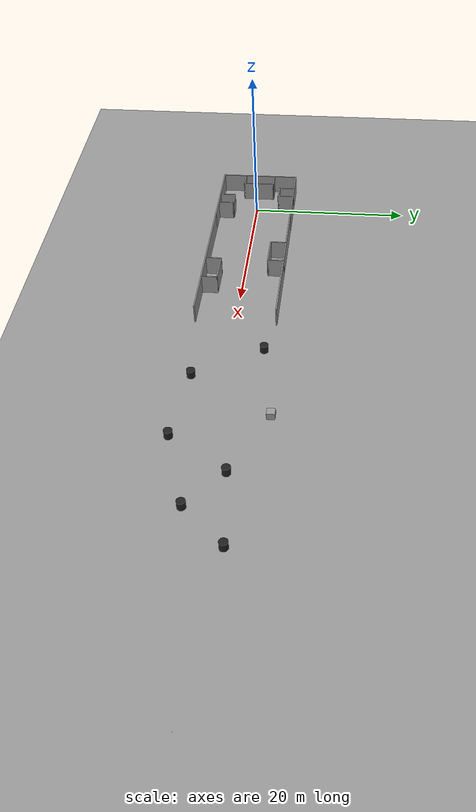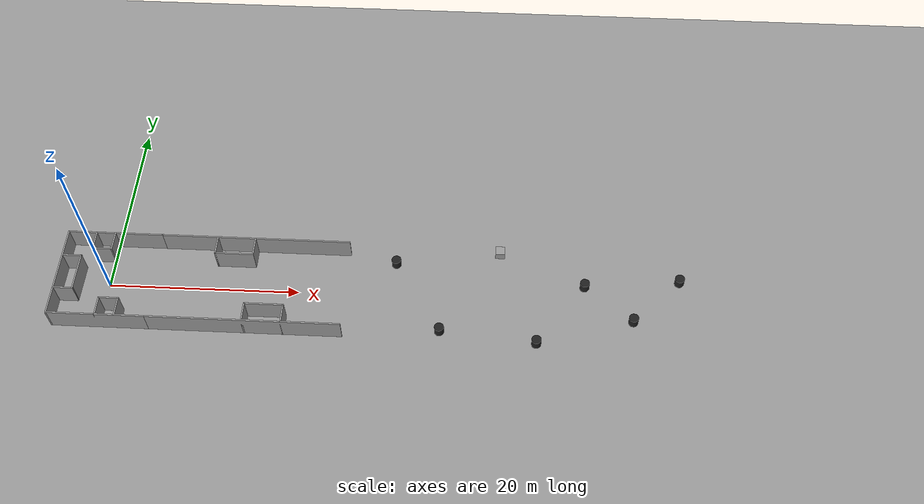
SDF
<sdf version="1.6">
 <world name="default">
  <light name="sun" type="directional">
   <pose>0 0 10 0 -0 0</pose>
   <diffuse>0.8 0.8 0.8 1</diffuse>
   <specular>0.1 0.1 0.1 1</specular>
   <attenuation>
    <range>1000</range>
    <constant>0.9</constant>
    <linear>0.01</linear>
    <quadratic>0.001</quadratic>
   </attenuation>
   <direction>-0.5 0.5 -1</direction>
  </light>
  <gravity>0 0 -9.8</gravity>
  <magnetic_field>6e-06 2.3e-05 -4.2e-05</magnetic_field>
  <atmosphere type="adiabatic"/>
  <physics name="default_physics" default="0" type="ode">
   <max_step_size>0.001</max_step_size>
   <real_time_factor>1</real_time_factor>
   <real_time_update_rate>1000</real_time_update_rate>
  </physics>
  <scene><ambient>0.4 0.4 0.4 1</ambient><background>0.7 0.7 0.7 1</background><shadows>1</shadows></scene>
  <spherical_coordinates>
   <surface_model>EARTH_WGS84</surface_model>
   <latitude_deg>0</latitude_deg>
   <longitude_deg>0</longitude_deg>
   <elevation>0</elevation>
   <heading_deg>0</heading_deg>
  </spherical_coordinates>
  <model name="part_u">
   <link name="Wall_78">
    <collision name="Wall_78_Collision">
     <geometry><box><size>10.15 0.15 2.5</size></box></geometry>
     <pose>0 0 1.25 0 -0 0</pose>
    </collision>
    <visual name="Wall_78_Visual">
     <pose>0 0 1.25 0 -0 0</pose>
     <geometry><box><size>10.15 0.15 2.5</size></box></geometry>
     <material>
      <script><uri>file://media/materials/scripts/gazebo.material</uri><name>Gazebo/Grey</name></script>
      <ambient>1 1 1 1</ambient>
     </material>
    </visual>
    <pose>0 -5 0 0 -0 3.14159</pose>
   </link>
   <link name="Wall_79">
    <collision name="Wall_79_Collision">
     <geometry><box><size>10.15 0.15 2.5</size></box></geometry>
     <pose>0 0 1.25 0 -0 0</pose>
    </collision>
    <visual name="Wall_79_Visual">
     <pose>0 0 1.25 0 -0 0</pose>
     <geometry><box><size>10.15 0.15 2.5</size></box></geometry>
     <material>
      <script><uri>file://media/materials/scripts/gazebo.material</uri><name>Gazebo/Grey</name></script>
      <ambient>1 1 1 1</ambient>
     </material>
    </visual>
    <pose>-5 0 0 0 -0 1.5708</pose>
   </link>
   <link name="Wall_80">
    <collision name="Wall_80_Collision">
     <geometry><box><size>10.15 0.15 2.5</size></box></geometry>
     <pose>0 0 1.25 0 -0 0</pose>
    </collision>
    <visual name="Wall_80_Visual">
     <pose>0 0 1.25 0 -0 0</pose>
     <geometry><box><size>10.15 0.15 2.5</size></box></geometry>
     <material>
      <script><uri>file://media/materials/scripts/gazebo.material</uri><name>Gazebo/Grey</name></script>
      <ambient>1 1 1 1</ambient>
     </material>
    </visual>
    <pose>0 5 0 0 -0 0</pose>
   </link>
   <link name="Wall_82">
    <collision name="Wall_82_Collision">
     <geometry><box><size>2.15 0.15 2.5</size></box></geometry>
     <pose>0 0 1.25 0 -0 0</pose>
    </collision>
    <visual name="Wall_82_Visual">
     <pose>0 0 1.25 0 -0 0</pose>
     <geometry><box><size>2.15 0.15 2.5</size></box></geometry>
     <material>
      <script><uri>file://media/materials/scripts/gazebo.material</uri><name>Gazebo/Grey</name></script>
      <ambient>1 1 1 1</ambient>
     </material>
    </visual>
    <pose>-4 2 0 0 -0 0</pose>
   </link>
   <link name="Wall_83">
    <collision name="Wall_83_Collision">
     <geometry><box><size>4.15 0.15 2.5</size></box></geometry>
     <pose>0 0 1.25 0 -0 0</pose>
    </collision>
    <visual name="Wall_83_Visual">
     <pose>0 0 1.25 0 -0 0</pose>
     <geometry><box><size>4.15 0.15 2.5</size></box></geometry>
     <material>
      <script><uri>file://media/materials/scripts/gazebo.material</uri><name>Gazebo/Grey</name></script>
      <ambient>1 1 1 1</ambient>
     </material>
    </visual>
    <pose>-3 0 0 0 0 -1.5708</pose>
   </link>
   <link name="Wall_84">
    <collision name="Wall_84_Collision">
     <geometry><box><size>2.15 0.15 2.5</size></box></geometry>
     <pose>0 0 1.25 0 -0 0</pose>
    </collision>
    <visual name="Wall_84_Visual">
     <pose>0 0 1.25 0 -0 0</pose>
     <geometry><box><size>2.15 0.15 2.5</size></box></geometry>
     <material>
      <script><uri>file://media/materials/scripts/gazebo.material</uri><name>Gazebo/Grey</name></script>
      <ambient>1 1 1 1</ambient>
     </material>
    </visual>
    <pose>-4 -2 0 0 -0 3.14159</pose>
   </link>
   <link name="Wall_86">
    <collision name="Wall_86_Collision">
     <geometry><box><size>2.15 0.15 2.5</size></box></geometry>
     <pose>0 0 1.25 0 -0 0</pose>
    </collision>
    <visual name="Wall_86_Visual">
     <pose>0 0 1.25 0 -0 0</pose>
     <geometry><box><size>2.15 0.15 2.5</size></box></geometry>
     <material>
      <script><uri>file://media/materials/scripts/gazebo.material</uri><name>Gazebo/Grey</name></script>
      <ambient>1 1 1 1</ambient>
     </material>
    </visual>
    <pose>-2 4 0 0 0 -1.5708</pose>
   </link>
   <link name="Wall_87">
    <collision name="Wall_87_Collision">
     <geometry><box><size>2.15 0.15 2.5</size></box></geometry>
     <pose>0 0 1.25 0 -0 0</pose>
    </collision>
    <visual name="Wall_87_Visual">
     <pose>0 0 1.25 0 -0 0</pose>
     <geometry><box><size>2.15 0.15 2.5</size></box></geometry>
     <material>
      <script><uri>file://media/materials/scripts/gazebo.material</uri><name>Gazebo/Grey</name></script>
      <ambient>1 1 1 1</ambient>
     </material>
    </visual>
    <pose>-1 3 0 0 -0 0</pose>
   </link>
   <link name="Wall_88">
    <collision name="Wall_88_Collision">
     <geometry><box><size>2.15 0.15 2.5</size></box></geometry>
     <pose>0 0 1.25 0 -0 0</pose>
    </collision>
    <visual name="Wall_88_Visual">
     <pose>0 0 1.25 0 -0 0</pose>
     <geometry><box><size>2.15 0.15 2.5</size></box></geometry>
     <material>
      <script><uri>file://media/materials/scripts/gazebo.material</uri><name>Gazebo/Grey</name></script>
      <ambient>1 1 1 1</ambient>
     </material>
    </visual>
    <pose>0 4 0 0 -0 1.5708</pose>
   </link>
   <link name="Wall_90">
    <collision name="Wall_90_Collision">
     <geometry><box><size>2.15 0.15 2.5</size></box></geometry>
     <pose>0 0 1.25 0 -0 0</pose>
    </collision>
    <visual name="Wall_90_Visual">
     <pose>0 0 1.25 0 -0 0</pose>
     <geometry><box><size>2.15 0.15 2.5</size></box></geometry>
     <material>
      <script><uri>file://media/materials/scripts/gazebo.material</uri><name>Gazebo/Grey</name></script>
      <ambient>1 1 1 1</ambient>
     </material>
    </visual>
    <pose>0 -4 0 0 -0 1.5708</pose>
   </link>
   <link name="Wall_91">
    <collision name="Wall_91_Collision">
     <geometry><box><size>2.15 0.15 2.5</size></box></geometry>
     <pose>0 0 1.25 0 -0 0</pose>
    </collision>
    <visual name="Wall_91_Visual">
     <pose>0 0 1.25 0 -0 0</pose>
     <geometry><box><size>2.15 0.15 2.5</size></box></geometry>
     <material>
      <script><uri>file://media/materials/scripts/gazebo.material</uri><name>Gazebo/Grey</name></script>
      <ambient>1 1 1 1</ambient>
     </material>
    </visual>
    <pose>1 -3 0 0 -0 0</pose>
   </link>
   <link name="Wall_92">
    <collision name="Wall_92_Collision">
     <geometry><box><size>2.15 0.15 2.5</size></box></geometry>
     <pose>0 0 1.25 0 -0 0</pose>
    </collision>
    <visual name="Wall_92_Visual">
     <pose>0 0 1.25 0 -0 0</pose>
     <geometry><box><size>2.15 0.15 2.5</size></box></geometry>
     <material>
      <script><uri>file://media/materials/scripts/gazebo.material</uri><name>Gazebo/Grey</name></script>
      <ambient>1 1 1 1</ambient>
     </material>
    </visual>
    <pose>2 -4 0 0 0 -1.5708</pose>
   </link>
   <static>1</static>
  </model>
  <model name="part_line">
   <link name="Wall_15">
    <pose>0 -5 0 0 -0 0</pose>
    <visual name="Wall_15_Visual">
     <pose>0 0 1.25 0 -0 0</pose>
     <geometry><box><size>20.15 0.15 2.5</size></box></geometry>
     <material>
      <script><uri>file://media/materials/scripts/gazebo.material</uri><name>Gazebo/Grey</name></script>
      <ambient>1 1 1 1</ambient>
      <diffuse>0.7 0.7 0.7 1</diffuse>
      <specular>0.01 0.01 0.01 1</specular>
      <emissive>0 0 0 1</emissive>
     </material>
    </visual>
    <collision name="Wall_15_Collision">
     <pose>0 0 1.25 0 -0 0</pose>
     <geometry><box><size>20.15 0.15 2.5</size></box></geometry>
     <surface>
      <friction>
       <ode><mu>1</mu><mu2>1</mu2><fdir1>0 0 0</fdir1><slip1>0</slip1><slip2>0</slip2></ode>
       <torsional>
        <coefficient>1</coefficient>
        <patch_radius>0</patch_radius>
        <surface_radius>0</surface_radius>
        <use_patch_radius>1</use_patch_radius>
        <ode><slip>0</slip></ode>
       </torsional>
      </friction>
      <bounce><restitution_coefficient>0</restitution_coefficient><threshold>1e+06</threshold></bounce>
      <contact>
       <collide_without_contact>0</collide_without_contact>
       <collide_without_contact_bitmask>1</collide_without_contact_bitmask>
       <collide_bitmask>1</collide_bitmask>
       <ode>
        <soft_cfm>0</soft_cfm>
        <soft_erp>0.2</soft_erp>
        <kp>1e+13</kp>
        <kd>1</kd>
        <max_vel>0.01</max_vel>
        <min_depth>0</min_depth>
       </ode>
       <bullet>
        <split_impulse>1</split_impulse>
        <split_impulse_penetration_threshold>-0.01</split_impulse_penetration_threshold>
        <soft_cfm>0</soft_cfm>
        <soft_erp>0.2</soft_erp>
        <kp>1e+13</kp>
        <kd>1</kd>
       </bullet>
      </contact>
     </surface>
    </collision>
   </link>
   <link name="Wall_17">
    <pose>0 5 0 0 -0 0</pose>
    <visual name="Wall_17_Visual">
     <pose>0 0 1.25 0 -0 0</pose>
     <geometry><box><size>20.15 0.15 2.5</size></box></geometry>
     <material>
      <script><uri>file://media/materials/scripts/gazebo.material</uri><name>Gazebo/Grey</name></script>
      <ambient>1 1 1 1</ambient>
      <diffuse>0.7 0.7 0.7 1</diffuse>
      <specular>0.01 0.01 0.01 1</specular>
      <emissive>0 0 0 1</emissive>
     </material>
    </visual>
    <collision name="Wall_17_Collision">
     <pose>0 0 1.25 0 -0 0</pose>
     <geometry><box><size>20.15 0.15 2.5</size></box></geometry>
     <surface>
      <friction>
       <ode><mu>1</mu><mu2>1</mu2><fdir1>0 0 0</fdir1><slip1>0</slip1><slip2>0</slip2></ode>
       <torsional>
        <coefficient>1</coefficient>
        <patch_radius>0</patch_radius>
        <surface_radius>0</surface_radius>
        <use_patch_radius>1</use_patch_radius>
        <ode><slip>0</slip></ode>
       </torsional>
      </friction>
      <bounce><restitution_coefficient>0</restitution_coefficient><threshold>1e+06</threshold></bounce>
      <contact>
       <collide_without_contact>0</collide_without_contact>
       <collide_without_contact_bitmask>1</collide_without_contact_bitmask>
       <collide_bitmask>1</collide_bitmask>
       <ode>
        <soft_cfm>0</soft_cfm>
        <soft_erp>0.2</soft_erp>
        <kp>1e+13</kp>
        <kd>1</kd>
        <max_vel>0.01</max_vel>
        <min_depth>0</min_depth>
       </ode>
       <bullet>
        <split_impulse>1</split_impulse>
        <split_impulse_penetration_threshold>-0.01</split_impulse_penetration_threshold>
        <soft_cfm>0</soft_cfm>
        <soft_erp>0.2</soft_erp>
        <kp>1e+13</kp>
        <kd>1</kd>
       </bullet>
      </contact>
     </surface>
    </collision>
   </link>
   <link name="Wall_19">
    <pose>-4 4 0 0 0 -1.5708</pose>
    <visual name="Wall_19_Visual">
     <pose>0 0 1.25 0 -0 0</pose>
     <geometry><box><size>2.15 0.15 2.5</size></box></geometry>
     <material>
      <script><uri>file://media/materials/scripts/gazebo.material</uri><name>Gazebo/Grey</name></script>
      <ambient>1 1 1 1</ambient>
      <diffuse>0.7 0.7 0.7 1</diffuse>
      <specular>0.01 0.01 0.01 1</specular>
      <emissive>0 0 0 1</emissive>
     </material>
    </visual>
    <collision name="Wall_19_Collision">
     <pose>0 0 1.25 0 -0 0</pose>
     <geometry><box><size>2.15 0.15 2.5</size></box></geometry>
     <surface>
      <friction>
       <ode><mu>1</mu><mu2>1</mu2><fdir1>0 0 0</fdir1><slip1>0</slip1><slip2>0</slip2></ode>
       <torsional>
        <coefficient>1</coefficient>
        <patch_radius>0</patch_radius>
        <surface_radius>0</surface_radius>
        <use_patch_radius>1</use_patch_radius>
        <ode><slip>0</slip></ode>
       </torsional>
      </friction>
      <bounce><restitution_coefficient>0</restitution_coefficient><threshold>1e+06</threshold></bounce>
      <contact>
       <collide_without_contact>0</collide_without_contact>
       <collide_without_contact_bitmask>1</collide_without_contact_bitmask>
       <collide_bitmask>1</collide_bitmask>
       <ode>
        <soft_cfm>0</soft_cfm>
        <soft_erp>0.2</soft_erp>
        <kp>1e+13</kp>
        <kd>1</kd>
        <max_vel>0.01</max_vel>
        <min_depth>0</min_depth>
       </ode>
       <bullet>
        <split_impulse>1</split_impulse>
        <split_impulse_penetration_threshold>-0.01</split_impulse_penetration_threshold>
        <soft_cfm>0</soft_cfm>
        <soft_erp>0.2</soft_erp>
        <kp>1e+13</kp>
        <kd>1</kd>
       </bullet>
      </contact>
     </surface>
    </collision>
   </link>
   <link name="Wall_20">
    <pose>-2 3 0 0 -0 0</pose>
    <visual name="Wall_20_Visual">
     <pose>0 0 1.25 0 -0 0</pose>
     <geometry><box><size>4.15 0.15 2.5</size></box></geometry>
     <material>
      <script><uri>file://media/materials/scripts/gazebo.material</uri><name>Gazebo/Grey</name></script>
      <ambient>1 1 1 1</ambient>
      <diffuse>0.7 0.7 0.7 1</diffuse>
      <specular>0.01 0.01 0.01 1</specular>
      <emissive>0 0 0 1</emissive>
     </material>
    </visual>
    <collision name="Wall_20_Collision">
     <pose>0 0 1.25 0 -0 0</pose>
     <geometry><box><size>4.15 0.15 2.5</size></box></geometry>
     <surface>
      <friction>
       <ode><mu>1</mu><mu2>1</mu2><fdir1>0 0 0</fdir1><slip1>0</slip1><slip2>0</slip2></ode>
       <torsional>
        <coefficient>1</coefficient>
        <patch_radius>0</patch_radius>
        <surface_radius>0</surface_radius>
        <use_patch_radius>1</use_patch_radius>
        <ode><slip>0</slip></ode>
       </torsional>
      </friction>
      <bounce><restitution_coefficient>0</restitution_coefficient><threshold>1e+06</threshold></bounce>
      <contact>
       <collide_without_contact>0</collide_without_contact>
       <collide_without_contact_bitmask>1</collide_without_contact_bitmask>
       <collide_bitmask>1</collide_bitmask>
       <ode>
        <soft_cfm>0</soft_cfm>
        <soft_erp>0.2</soft_erp>
        <kp>1e+13</kp>
        <kd>1</kd>
        <max_vel>0.01</max_vel>
        <min_depth>0</min_depth>
       </ode>
       <bullet>
        <split_impulse>1</split_impulse>
        <split_impulse_penetration_threshold>-0.01</split_impulse_penetration_threshold>
        <soft_cfm>0</soft_cfm>
        <soft_erp>0.2</soft_erp>
        <kp>1e+13</kp>
        <kd>1</kd>
       </bullet>
      </contact>
     </surface>
    </collision>
   </link>
   <link name="Wall_21">
    <pose>0 4 0 0 -0 1.5708</pose>
    <visual name="Wall_21_Visual">
     <pose>0 0 1.25 0 -0 0</pose>
     <geometry><box><size>2.15 0.15 2.5</size></box></geometry>
     <material>
      <script><uri>file://media/materials/scripts/gazebo.material</uri><name>Gazebo/Grey</name></script>
      <ambient>1 1 1 1</ambient>
      <diffuse>0.7 0.7 0.7 1</diffuse>
      <specular>0.01 0.01 0.01 1</specular>
      <emissive>0 0 0 1</emissive>
     </material>
    </visual>
    <collision name="Wall_21_Collision">
     <pose>0 0 1.25 0 -0 0</pose>
     <geometry><box><size>2.15 0.15 2.5</size></box></geometry>
     <surface>
      <friction>
       <ode><mu>1</mu><mu2>1</mu2><fdir1>0 0 0</fdir1><slip1>0</slip1><slip2>0</slip2></ode>
       <torsional>
        <coefficient>1</coefficient>
        <patch_radius>0</patch_radius>
        <surface_radius>0</surface_radius>
        <use_patch_radius>1</use_patch_radius>
        <ode><slip>0</slip></ode>
       </torsional>
      </friction>
      <bounce><restitution_coefficient>0</restitution_coefficient><threshold>1e+06</threshold></bounce>
      <contact>
       <collide_without_contact>0</collide_without_contact>
       <collide_without_contact_bitmask>1</collide_without_contact_bitmask>
       <collide_bitmask>1</collide_bitmask>
       <ode>
        <soft_cfm>0</soft_cfm>
        <soft_erp>0.2</soft_erp>
        <kp>1e+13</kp>
        <kd>1</kd>
        <max_vel>0.01</max_vel>
        <min_depth>0</min_depth>
       </ode>
       <bullet>
        <split_impulse>1</split_impulse>
        <split_impulse_penetration_threshold>-0.01</split_impulse_penetration_threshold>
        <soft_cfm>0</soft_cfm>
        <soft_erp>0.2</soft_erp>
        <kp>1e+13</kp>
        <kd>1</kd>
       </bullet>
      </contact>
     </surface>
    </collision>
   </link>
   <link name="Wall_23">
    <pose>0 -4 0 0 -0 1.5708</pose>
    <visual name="Wall_23_Visual">
     <pose>0 0 1.25 0 -0 0</pose>
     <geometry><box><size>2.15 0.15 2.5</size></box></geometry>
     <material>
      <script><uri>file://media/materials/scripts/gazebo.material</uri><name>Gazebo/Grey</name></script>
      <ambient>1 1 1 1</ambient>
      <diffuse>0.7 0.7 0.7 1</diffuse>
      <specular>0.01 0.01 0.01 1</specular>
      <emissive>0 0 0 1</emissive>
     </material>
    </visual>
    <collision name="Wall_23_Collision">
     <pose>0 0 1.25 0 -0 0</pose>
     <geometry><box><size>2.15 0.15 2.5</size></box></geometry>
     <surface>
      <friction>
       <ode><mu>1</mu><mu2>1</mu2><fdir1>0 0 0</fdir1><slip1>0</slip1><slip2>0</slip2></ode>
       <torsional>
        <coefficient>1</coefficient>
        <patch_radius>0</patch_radius>
        <surface_radius>0</surface_radius>
        <use_patch_radius>1</use_patch_radius>
        <ode><slip>0</slip></ode>
       </torsional>
      </friction>
      <bounce><restitution_coefficient>0</restitution_coefficient><threshold>1e+06</threshold></bounce>
      <contact>
       <collide_without_contact>0</collide_without_contact>
       <collide_without_contact_bitmask>1</collide_without_contact_bitmask>
       <collide_bitmask>1</collide_bitmask>
       <ode>
        <soft_cfm>0</soft_cfm>
        <soft_erp>0.2</soft_erp>
        <kp>1e+13</kp>
        <kd>1</kd>
        <max_vel>0.01</max_vel>
        <min_depth>0</min_depth>
       </ode>
       <bullet>
        <split_impulse>1</split_impulse>
        <split_impulse_penetration_threshold>-0.01</split_impulse_penetration_threshold>
        <soft_cfm>0</soft_cfm>
        <soft_erp>0.2</soft_erp>
        <kp>1e+13</kp>
        <kd>1</kd>
       </bullet>
      </contact>
     </surface>
    </collision>
   </link>
   <link name="Wall_24">
    <pose>2 -3 0 0 -0 0</pose>
    <visual name="Wall_24_Visual">
     <pose>0 0 1.25 0 -0 0</pose>
     <geometry><box><size>4.15 0.15 2.5</size></box></geometry>
     <material>
      <script><uri>file://media/materials/scripts/gazebo.material</uri><name>Gazebo/Grey</name></script>
      <ambient>1 1 1 1</ambient>
      <diffuse>0.7 0.7 0.7 1</diffuse>
      <specular>0.01 0.01 0.01 1</specular>
      <emissive>0 0 0 1</emissive>
     </material>
    </visual>
    <collision name="Wall_24_Collision">
     <pose>0 0 1.25 0 -0 0</pose>
     <geometry><box><size>4.15 0.15 2.5</size></box></geometry>
     <surface>
      <friction>
       <ode><mu>1</mu><mu2>1</mu2><fdir1>0 0 0</fdir1><slip1>0</slip1><slip2>0</slip2></ode>
       <torsional>
        <coefficient>1</coefficient>
        <patch_radius>0</patch_radius>
        <surface_radius>0</surface_radius>
        <use_patch_radius>1</use_patch_radius>
        <ode><slip>0</slip></ode>
       </torsional>
      </friction>
      <bounce><restitution_coefficient>0</restitution_coefficient><threshold>1e+06</threshold></bounce>
      <contact>
       <collide_without_contact>0</collide_without_contact>
       <collide_without_contact_bitmask>1</collide_without_contact_bitmask>
       <collide_bitmask>1</collide_bitmask>
       <ode>
        <soft_cfm>0</soft_cfm>
        <soft_erp>0.2</soft_erp>
        <kp>1e+13</kp>
        <kd>1</kd>
        <max_vel>0.01</max_vel>
        <min_depth>0</min_depth>
       </ode>
       <bullet>
        <split_impulse>1</split_impulse>
        <split_impulse_penetration_threshold>-0.01</split_impulse_penetration_threshold>
        <soft_cfm>0</soft_cfm>
        <soft_erp>0.2</soft_erp>
        <kp>1e+13</kp>
        <kd>1</kd>
       </bullet>
      </contact>
     </surface>
    </collision>
   </link>
   <link name="Wall_25">
    <pose>4 -4 0 0 0 -1.5708</pose>
    <visual name="Wall_25_Visual">
     <pose>0 0 1.25 0 -0 0</pose>
     <geometry><box><size>2.15 0.15 2.5</size></box></geometry>
     <material>
      <script><uri>file://media/materials/scripts/gazebo.material</uri><name>Gazebo/Grey</name></script>
      <ambient>1 1 1 1</ambient>
      <diffuse>0.7 0.7 0.7 1</diffuse>
      <specular>0.01 0.01 0.01 1</specular>
      <emissive>0 0 0 1</emissive>
     </material>
    </visual>
    <collision name="Wall_25_Collision">
     <pose>0 0 1.25 0 -0 0</pose>
     <geometry><box><size>2.15 0.15 2.5</size></box></geometry>
     <surface>
      <friction>
       <ode><mu>1</mu><mu2>1</mu2><fdir1>0 0 0</fdir1><slip1>0</slip1><slip2>0</slip2></ode>
       <torsional>
        <coefficient>1</coefficient>
        <patch_radius>0</patch_radius>
        <surface_radius>0</surface_radius>
        <use_patch_radius>1</use_patch_radius>
        <ode><slip>0</slip></ode>
       </torsional>
      </friction>
      <bounce><restitution_coefficient>0</restitution_coefficient><threshold>1e+06</threshold></bounce>
      <contact>
       <collide_without_contact>0</collide_without_contact>
       <collide_without_contact_bitmask>1</collide_without_contact_bitmask>
       <collide_bitmask>1</collide_bitmask>
       <ode>
        <soft_cfm>0</soft_cfm>
        <soft_erp>0.2</soft_erp>
        <kp>1e+13</kp>
        <kd>1</kd>
        <max_vel>0.01</max_vel>
        <min_depth>0</min_depth>
       </ode>
       <bullet>
        <split_impulse>1</split_impulse>
        <split_impulse_penetration_threshold>-0.01</split_impulse_penetration_threshold>
        <soft_cfm>0</soft_cfm>
        <soft_erp>0.2</soft_erp>
        <kp>1e+13</kp>
        <kd>1</kd>
       </bullet>
      </contact>
     </surface>
    </collision>
   </link>
   <static>1</static>
   <pose>15 0 0 0 -0 0</pose>
  </model>
  <model name="ground_plane_0">
   <static>1</static>
   <link name="link">
    <collision name="collision">
     <geometry><plane><normal>0 0 1</normal><size>1000 1000</size></plane></geometry>
     <surface><friction><ode><mu>1000</mu><mu2>50</mu2></ode></friction></surface>
    </collision>
    <visual name="visual">
     <cast_shadows>0</cast_shadows>
     <geometry><plane><normal>0 0 1</normal><size>1000 1000</size></plane></geometry>
     <material>
      <script><uri>file://media/materials/scripts/gazebo.material</uri><name>Gazebo/Grey</name></script>
     </material>
    </visual>
   </link>
  </model>
  <model name="ycb_orange_wood_block">
   <link name="link">
    <pose>0 0 0.0125 0 -0 0</pose>
    <inertial>
     <mass>0.01</mass>
     <inertia><ixx>1</ixx><ixy>0</ixy><ixz>0</ixz><iyy>1</iyy><iyz>0</iyz><izz>1</izz></inertia>
    </inertial>
    <collision name="collision">
     <geometry><box><size>0.025 0.025 0.025</size></box></geometry>
     <surface>
      <friction><ode><mu>1000</mu><mu2>100</mu2></ode></friction>
      <contact><ode><kp>1e+06</kp><kd>100</kd><max_vel>1</max_vel><min_depth>0.001</min_depth></ode></contact>
     </surface>
    </collision>
    <visual name="visual">
     <geometry><box><size>0.025 0.025 0.025</size></box></geometry>
     <material>
      <script><uri>file://media/materials/scripts/gazebo.material</uri><name>Gazebo/Orange</name></script>
     </material>
    </visual>
   </link>
   <pose>80.0954 1.15578 -8e-06 0 -0 0</pose>
  </model>
  <model name="unit_cylinder_1">
   <link name="link">
    <inertial>
     <mass>1</mass>
     <inertia><ixx>0.145833</ixx><ixy>0</ixy><ixz>0</ixz><iyy>0.145833</iyy><iyz>0</iyz><izz>0.125</izz></inertia>
    </inertial>
    <visual name="visual">
     <geometry><cylinder><radius>0.5</radius><length>1</length></cylinder></geometry>
     <material>
      <script><name>Gazebo/Black</name><uri>file://media/materials/scripts/gazebo.material</uri></script>
      <ambient>0.3 0.3 0.3 1</ambient>
      <diffuse>0.7 0.7 0.7 1</diffuse>
      <specular>0.01 0.01 0.01 1</specular>
      <emissive>0 0 0 1</emissive>
      <shader type="vertex"><normal_map>__default__</normal_map></shader>
     </material>
    </visual>
    <collision name="collision">
     <geometry><cylinder><radius>0.5</radius><length>1</length></cylinder></geometry>
     <surface>
      <friction>
       <ode><mu>1</mu><mu2>1</mu2><fdir1>0 0 0</fdir1><slip1>0</slip1><slip2>0</slip2></ode>
       <torsional>
        <coefficient>1</coefficient>
        <patch_radius>0</patch_radius>
        <surface_radius>0</surface_radius>
        <use_patch_radius>1</use_patch_radius>
        <ode><slip>0</slip></ode>
       </torsional>
      </friction>
      <bounce><restitution_coefficient>0</restitution_coefficient><threshold>1e+06</threshold></bounce>
      <contact>
       <collide_without_contact>0</collide_without_contact>
       <collide_without_contact_bitmask>1</collide_without_contact_bitmask>
       <collide_bitmask>1</collide_bitmask>
       <ode>
        <soft_cfm>0</soft_cfm>
        <soft_erp>0.2</soft_erp>
        <kp>1e+13</kp>
        <kd>1</kd>
        <max_vel>0.01</max_vel>
        <min_depth>0</min_depth>
       </ode>
       <bullet>
        <split_impulse>1</split_impulse>
        <split_impulse_penetration_threshold>-0.01</split_impulse_penetration_threshold>
        <soft_cfm>0</soft_cfm>
        <soft_erp>0.2</soft_erp>
        <kp>1e+13</kp>
        <kd>1</kd>
       </bullet>
      </contact>
     </surface>
    </collision>
   </link>
   <static>0</static>
   <pose>30 4 0.499992 -3e-06 -2e-06 0</pose>
  </model>
  <model name="unit_cylinder_1_0">
   <link name="link">
    <inertial>
     <mass>1</mass>
     <inertia><ixx>0.145833</ixx><ixy>0</ixy><ixz>0</ixz><iyy>0.145833</iyy><iyz>0</iyz><izz>0.125</izz></inertia>
    </inertial>
    <visual name="visual">
     <geometry><cylinder><radius>0.5</radius><length>1</length></cylinder></geometry>
     <material>
      <script><name>Gazebo/Black</name><uri>file://media/materials/scripts/gazebo.material</uri></script>
      <ambient>0.3 0.3 0.3 1</ambient>
      <diffuse>0.7 0.7 0.7 1</diffuse>
      <specular>0.01 0.01 0.01 1</specular>
      <emissive>0 0 0 1</emissive>
      <shader type="vertex"><normal_map>__default__</normal_map></shader>
     </material>
    </visual>
    <collision name="collision">
     <geometry><cylinder><radius>0.5</radius><length>1</length></cylinder></geometry>
     <surface>
      <friction>
       <ode><mu>1</mu><mu2>1</mu2><fdir1>0 0 0</fdir1><slip1>0</slip1><slip2>0</slip2></ode>
       <torsional>
        <coefficient>1</coefficient>
        <patch_radius>0</patch_radius>
        <surface_radius>0</surface_radius>
        <use_patch_radius>1</use_patch_radius>
        <ode><slip>0</slip></ode>
       </torsional>
      </friction>
      <bounce><restitution_coefficient>0</restitution_coefficient><threshold>1e+06</threshold></bounce>
      <contact>
       <collide_without_contact>0</collide_without_contact>
       <collide_without_contact_bitmask>1</collide_without_contact_bitmask>
       <collide_bitmask>1</collide_bitmask>
       <ode>
        <soft_cfm>0</soft_cfm>
        <soft_erp>0.2</soft_erp>
        <kp>1e+13</kp>
        <kd>1</kd>
        <max_vel>0.01</max_vel>
        <min_depth>0</min_depth>
       </ode>
       <bullet>
        <split_impulse>1</split_impulse>
        <split_impulse_penetration_threshold>-0.01</split_impulse_penetration_threshold>
        <soft_cfm>0</soft_cfm>
        <soft_erp>0.2</soft_erp>
        <kp>1e+13</kp>
        <kd>1</kd>
       </bullet>
      </contact>
     </surface>
    </collision>
   </link>
   <static>0</static>
   <pose>35 -4 0.499991 0 -0 0</pose>
  </model>
  <model name="unit_box_0">
   <link name="link">
    <pose>1.00611 0.849615 -0 0 -0 0</pose>
    <inertial>
     <mass>1</mass>
     <inertia>
      <ixx>0.166667</ixx>
      <ixy>0</ixy>
      <ixz>0</ixz>
      <iyy>0.166667</iyy>
      <iyz>0</iyz>
      <izz>0.166667</izz>
     </inertia>
    </inertial>
    <visual name="visual">
     <geometry><box><size>1 1 1</size></box></geometry>
     <material>
      <script><name>Gazebo/Grey</name><uri>file://media/materials/scripts/gazebo.material</uri></script>
      <ambient>0.3 0.3 0.3 1</ambient>
      <diffuse>0.7 0.7 0.7 1</diffuse>
      <specular>0.01 0.01 0.01 1</specular>
      <emissive>0 0 0 1</emissive>
      <shader type="vertex"><normal_map>__default__</normal_map></shader>
     </material>
    </visual>
    <collision name="collision">
     <geometry><box><size>0.5 0.5 0.5</size></box></geometry>
     <surface>
      <friction>
       <ode><mu>1</mu><mu2>1</mu2><fdir1>0 0 0</fdir1><slip1>0</slip1><slip2>0</slip2></ode>
       <torsional>
        <coefficient>1</coefficient>
        <patch_radius>0</patch_radius>
        <surface_radius>0</surface_radius>
        <use_patch_radius>1</use_patch_radius>
        <ode><slip>0</slip></ode>
       </torsional>
      </friction>
      <bounce><restitution_coefficient>0</restitution_coefficient><threshold>1e+06</threshold></bounce>
      <contact>
       <collide_without_contact>0</collide_without_contact>
       <collide_without_contact_bitmask>1</collide_without_contact_bitmask>
       <collide_bitmask>1</collide_bitmask>
       <ode>
        <soft_cfm>0</soft_cfm>
        <soft_erp>0.2</soft_erp>
        <kp>1e+13</kp>
        <kd>1</kd>
        <max_vel>0.01</max_vel>
        <min_depth>0</min_depth>
       </ode>
       <bullet>
        <split_impulse>1</split_impulse>
        <split_impulse_penetration_threshold>-0.01</split_impulse_penetration_threshold>
        <soft_cfm>0</soft_cfm>
        <soft_erp>0.2</soft_erp>
        <kp>1e+13</kp>
        <kd>1</kd>
       </bullet>
      </contact>
     </surface>
    </collision>
   </link>
   <static>0</static>
   <pose>40 5 0.25 0 -0 0</pose>
  </model>
  <model name="unit_cylinder_1_1">
   <link name="link">
    <inertial>
     <mass>1</mass>
     <inertia><ixx>0.145833</ixx><ixy>0</ixy><ixz>0</ixz><iyy>0.145833</iyy><iyz>0</iyz><izz>0.125</izz></inertia>
    </inertial>
    <visual name="visual">
     <geometry><cylinder><radius>0.5</radius><length>1</length></cylinder></geometry>
     <material>
      <script><name>Gazebo/Black</name><uri>file://media/materials/scripts/gazebo.material</uri></script>
      <ambient>0.3 0.3 0.3 1</ambient>
      <diffuse>0.7 0.7 0.7 1</diffuse>
      <specular>0.01 0.01 0.01 1</specular>
      <emissive>0 0 0 1</emissive>
      <shader type="vertex"><normal_map>__default__</normal_map></shader>
     </material>
    </visual>
    <collision name="collision">
     <geometry><cylinder><radius>0.5</radius><length>1</length></cylinder></geometry>
     <surface>
      <friction>
       <ode><mu>1</mu><mu2>1</mu2><fdir1>0 0 0</fdir1><slip1>0</slip1><slip2>0</slip2></ode>
       <torsional>
        <coefficient>1</coefficient>
        <patch_radius>0</patch_radius>
        <surface_radius>0</surface_radius>
        <use_patch_radius>1</use_patch_radius>
        <ode><slip>0</slip></ode>
       </torsional>
      </friction>
      <bounce><restitution_coefficient>0</restitution_coefficient><threshold>1e+06</threshold></bounce>
      <contact>
       <collide_without_contact>0</collide_without_contact>
       <collide_without_contact_bitmask>1</collide_without_contact_bitmask>
       <collide_bitmask>1</collide_bitmask>
       <ode>
        <soft_cfm>0</soft_cfm>
        <soft_erp>0.2</soft_erp>
        <kp>1e+13</kp>
        <kd>1</kd>
        <max_vel>0.01</max_vel>
        <min_depth>0</min_depth>
       </ode>
       <bullet>
        <split_impulse>1</split_impulse>
        <split_impulse_penetration_threshold>-0.01</split_impulse_penetration_threshold>
        <soft_cfm>0</soft_cfm>
        <soft_erp>0.2</soft_erp>
        <kp>1e+13</kp>
        <kd>1</kd>
       </bullet>
      </contact>
     </surface>
    </collision>
   </link>
   <static>0</static>
   <pose>45 -5 0.499998 3e-06 3e-06 0</pose>
  </model>
  <model name="unit_cylinder_1_2">
   <link name="link">
    <inertial>
     <mass>1</mass>
     <inertia><ixx>0.145833</ixx><ixy>0</ixy><ixz>0</ixz><iyy>0.145833</iyy><iyz>0</iyz><izz>0.125</izz></inertia>
    </inertial>
    <visual name="visual">
     <geometry><cylinder><radius>0.5</radius><length>1</length></cylinder></geometry>
     <material>
      <script><name>Gazebo/Black</name><uri>file://media/materials/scripts/gazebo.material</uri></script>
      <ambient>0.3 0.3 0.3 1</ambient>
      <diffuse>0.7 0.7 0.7 1</diffuse>
      <specular>0.01 0.01 0.01 1</specular>
      <emissive>0 0 0 1</emissive>
      <shader type="vertex"><normal_map>__default__</normal_map></shader>
     </material>
    </visual>
    <collision name="collision">
     <geometry><cylinder><radius>0.5</radius><length>1</length></cylinder></geometry>
     <surface>
      <friction>
       <ode><mu>1</mu><mu2>1</mu2><fdir1>0 0 0</fdir1><slip1>0</slip1><slip2>0</slip2></ode>
       <torsional>
        <coefficient>1</coefficient>
        <patch_radius>0</patch_radius>
        <surface_radius>0</surface_radius>
        <use_patch_radius>1</use_patch_radius>
        <ode><slip>0</slip></ode>
       </torsional>
      </friction>
      <bounce><restitution_coefficient>0</restitution_coefficient><threshold>1e+06</threshold></bounce>
      <contact>
       <collide_without_contact>0</collide_without_contact>
       <collide_without_contact_bitmask>1</collide_without_contact_bitmask>
       <collide_bitmask>1</collide_bitmask>
       <ode>
        <soft_cfm>0</soft_cfm>
        <soft_erp>0.2</soft_erp>
        <kp>1e+13</kp>
        <kd>1</kd>
        <max_vel>0.01</max_vel>
        <min_depth>0</min_depth>
       </ode>
       <bullet>
        <split_impulse>1</split_impulse>
        <split_impulse_penetration_threshold>-0.01</split_impulse_penetration_threshold>
        <soft_cfm>0</soft_cfm>
        <soft_erp>0.2</soft_erp>
        <kp>1e+13</kp>
        <kd>1</kd>
       </bullet>
      </contact>
     </surface>
    </collision>
   </link>
   <static>0</static>
   <pose>50 2 0.499999 0 -0 0</pose>
  </model>
  <model name="unit_cylinder_1_3">
   <link name="link">
    <inertial>
     <mass>1</mass>
     <inertia><ixx>0.145833</ixx><ixy>0</ixy><ixz>0</ixz><iyy>0.145833</iyy><iyz>0</iyz><izz>0.125</izz></inertia>
    </inertial>
    <visual name="visual">
     <geometry><cylinder><radius>0.5</radius><length>1</length></cylinder></geometry>
     <material>
      <script><name>Gazebo/Black</name><uri>file://media/materials/scripts/gazebo.material</uri></script>
      <ambient>0.3 0.3 0.3 1</ambient>
      <diffuse>0.7 0.7 0.7 1</diffuse>
      <specular>0.01 0.01 0.01 1</specular>
      <emissive>0 0 0 1</emissive>
      <shader type="vertex"><normal_map>__default__</normal_map></shader>
     </material>
    </visual>
    <collision name="collision">
     <geometry><cylinder><radius>0.5</radius><length>1</length></cylinder></geometry>
     <surface>
      <friction>
       <ode><mu>1</mu><mu2>1</mu2><fdir1>0 0 0</fdir1><slip1>0</slip1><slip2>0</slip2></ode>
       <torsional>
        <coefficient>1</coefficient>
        <patch_radius>0</patch_radius>
        <surface_radius>0</surface_radius>
        <use_patch_radius>1</use_patch_radius>
        <ode><slip>0</slip></ode>
       </torsional>
      </friction>
      <bounce><restitution_coefficient>0</restitution_coefficient><threshold>1e+06</threshold></bounce>
      <contact>
       <collide_without_contact>0</collide_without_contact>
       <collide_without_contact_bitmask>1</collide_without_contact_bitmask>
       <collide_bitmask>1</collide_bitmask>
       <ode>
        <soft_cfm>0</soft_cfm>
        <soft_erp>0.2</soft_erp>
        <kp>1e+13</kp>
        <kd>1</kd>
        <max_vel>0.01</max_vel>
        <min_depth>0</min_depth>
       </ode>
       <bullet>
        <split_impulse>1</split_impulse>
        <split_impulse_penetration_threshold>-0.01</split_impulse_penetration_threshold>
        <soft_cfm>0</soft_cfm>
        <soft_erp>0.2</soft_erp>
        <kp>1e+13</kp>
        <kd>1</kd>
       </bullet>
      </contact>
     </surface>
    </collision>
   </link>
   <static>0</static>
   <pose>55 -2 0.499996 -2e-06 -2e-06 0</pose>
  </model>
  <model name="unit_cylinder_1_4">
   <link name="link">
    <inertial>
     <mass>1</mass>
     <inertia><ixx>0.145833</ixx><ixy>0</ixy><ixz>0</ixz><iyy>0.145833</iyy><iyz>0</iyz><izz>0.125</izz></inertia>
    </inertial>
    <visual name="visual">
     <geometry><cylinder><radius>0.5</radius><length>1</length></cylinder></geometry>
     <material>
      <script><name>Gazebo/Black</name><uri>file://media/materials/scripts/gazebo.material</uri></script>
      <ambient>0.3 0.3 0.3 1</ambient>
      <diffuse>0.7 0.7 0.7 1</diffuse>
      <specular>0.01 0.01 0.01 1</specular>
      <emissive>0 0 0 1</emissive>
      <shader type="vertex"><normal_map>__default__</normal_map></shader>
     </material>
    </visual>
    <collision name="collision">
     <geometry><cylinder><radius>0.5</radius><length>1</length></cylinder></geometry>
     <surface>
      <friction>
       <ode><mu>1</mu><mu2>1</mu2><fdir1>0 0 0</fdir1><slip1>0</slip1><slip2>0</slip2></ode>
       <torsional>
        <coefficient>1</coefficient>
        <patch_radius>0</patch_radius>
        <surface_radius>0</surface_radius>
        <use_patch_radius>1</use_patch_radius>
        <ode><slip>0</slip></ode>
       </torsional>
      </friction>
      <bounce><restitution_coefficient>0</restitution_coefficient><threshold>1e+06</threshold></bounce>
      <contact>
       <collide_without_contact>0</collide_without_contact>
       <collide_without_contact_bitmask>1</collide_without_contact_bitmask>
       <collide_bitmask>1</collide_bitmask>
       <ode>
        <soft_cfm>0</soft_cfm>
        <soft_erp>0.2</soft_erp>
        <kp>1e+13</kp>
        <kd>1</kd>
        <max_vel>0.01</max_vel>
        <min_depth>0</min_depth>
       </ode>
       <bullet>
        <split_impulse>1</split_impulse>
        <split_impulse_penetration_threshold>-0.01</split_impulse_penetration_threshold>
        <soft_cfm>0</soft_cfm>
        <soft_erp>0.2</soft_erp>
        <kp>1e+13</kp>
        <kd>1</kd>
       </bullet>
      </contact>
     </surface>
    </collision>
   </link>
   <static>0</static>
   <pose>60 3 0.499996 -2e-06 -2e-06 0</pose>
  </model>
 </world>
</sdf>
